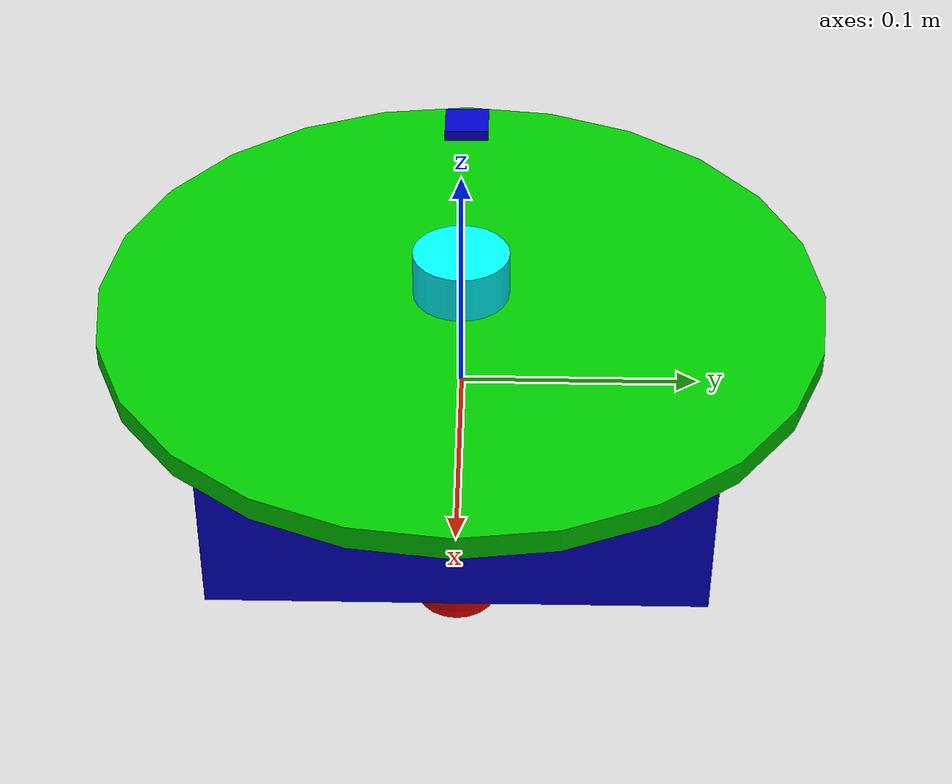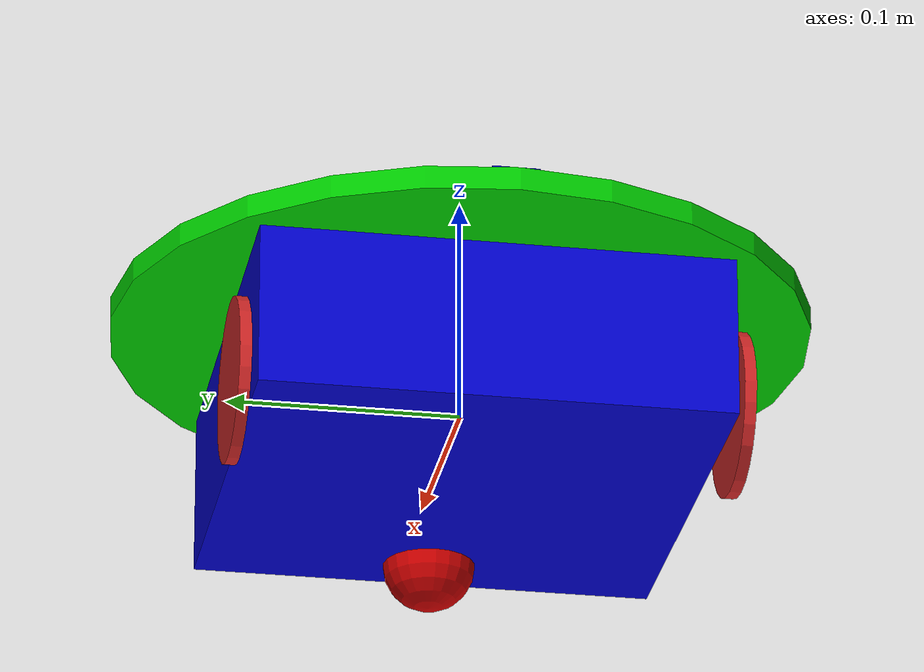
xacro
<?xml version="1.0"?>
<robot xmlns:xacro="http://www.ros.org/wiki/xacro"  name="robot">

    <xacro:arg name="use_ros2_control" default="false"/>
    <xacro:arg name="sim_mode" default="false"/>

    <xacro:include filename="robot_core.xacro" />

    <xacro:if value="$(arg use_ros2_control)">
        <xacro:include filename="ros2_control_hw_and_sim.xacro" />
    </xacro:if>
    <xacro:unless value="$(arg use_ros2_control)">
        <xacro:include filename="gazebo_control.xacro" />
    </xacro:unless>

    <xacro:include filename="lidar.xacro" />

    <!-- xacro:include filename="robot20230324plugin.xacro" /-->

    <xacro:include filename="camera20230324.xacro" />

    <!-- xacro:include filename="face.xacro" /-->

</robot>

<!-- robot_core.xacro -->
<robot name="two_wheeled_robot" xmlns:xacro="http://ros.org/wiki/xacro">

  <!-- ****************** ROBOT CONSTANTS *******************************  -->
  <!-- Define the size of the robot's main chassis in meters -->
  <xacro:property name="base_width" value="0.2"/>
  <xacro:property name="base_length" value="0.20"/>
  <xacro:property name="base_height" value="0.07"/>
  <xacro:property name="cover_rad" value="0.15"/>
  <xacro:property name="cover_thick" value="0.01"/>

  <!-- Define the shape of the robot's two back wheels in meters -->
  <xacro:property name="wheel_radius" value="0.035"/>
  <xacro:property name="wheel_width" value="0.005"/>

  <!-- x-axis points forward, y-axis points to left, z-axis points upwards -->
  <!-- Define the gap between the wheel and chassis along y-axis in meters -->
  <xacro:property name="wheel_ygap" value="0.005"/>

  <!-- Position the wheels along the z-axis -->
  <xacro:property name="wheel_zoff" value="0.02"/>

  <!-- Position the wheels along the x-axis -->
  <xacro:property name="wheel_xoff" value="-0.065"/>

  <!-- caster wheel  -->
  <xacro:property name="caster_radius" value="0.02"/>
  <xacro:property name="caster_xoff" value="0.080"/>

  <!-- material colors -->
  <material name="blue">
    <color rgba="0 0 0.8 1"/>
  </material>
  <material name="black">
    <color rgba="0 0 0 1"/>
  </material>
  <material name="white">
    <color rgba="1 1 1 1"/>
  </material>
  <material name="red">
    <color rgba="0.8 0.0 0.0 1.0"/>
  </material>
  <material name="mycolor">
    <color rgba="0.1 0.2 0.2 1.0"/>
  </material>
  <material name="green">
    <color rgba="0 0.8 0 1"/>
  </material>
  <material name="gray">
    <color rgba="0.5 0.5 0.5 1.0"/>
  </material>
  <material name="cyan">
    <color rgba="0 1.0 1.0 1.0"/>
  </material>

  <!-- Define intertial property macros  -->
  <!--Interial macros-->
  <xacro:macro name="cylinder_all" params="m r h">
    <inertial>
      <mass value="${m}"/>
      <inertia ixx="${m*(3*r*r+h*h)/12}" ixy = "0" ixz = "0" iyy="${m*(3*r*r+h*h)/12}" iyz = "0" izz="${m*r*r/2}"/>
    </inertial>
  </xacro:macro>

  <xacro:macro name="box_all" params="m w h d">
    <inertial>
      <mass value="${m}"/>
      <inertia ixx="${m / 12.0 * (d*d + h*h)}" ixy="0.0" ixz="0.0" iyy="${m / 12.0 * (w*w + h*h)}" iyz="0.0" izz="${m / 12.0 * (w*w + d*d)}"/>
    </inertial>
  </xacro:macro>

  <xacro:macro name="sphere_all" params="m r">
    <inertial>
      <mass value="${m}"/>
      <inertia ixx="${2.0*m*(r*r)/5.0}" ixy="0.0" ixz="0.0" iyy="${2.0*m*(r*r)/5.0}" iyz="0.0" izz="${2.0*m*(r*r)/5.0}"/>
    </inertial>
  </xacro:macro>

  <xacro:macro name="box_inertia" params="m w h d">
    <inertial>
      <origin xyz="0 0 0" rpy="${pi/2} 0 ${pi/2}"/>
      <mass value="${m}"/>
      <inertia ixx="${(m/12) * (h*h + d*d)}" ixy="0.0" ixz="0.0" iyy="${(m/12) * (w*w + d*d)}" iyz="0.0" izz="${(m/12) * (w*w + h*h)}"/>
    </inertial>
  </xacro:macro>

  <xacro:macro name="cylinder_inertia" params="m r h">
    <inertial>
      <origin xyz="0 0 0" rpy="${pi/2} 0 0" />
      <mass value="${m}"/>
      <inertia ixx="${(m/12) * (3*r*r + h*h)}" ixy = "0" ixz = "0" iyy="${(m/12) * (3*r*r + h*h)}" iyz = "0" izz="${(m/2) * (r*r)}"/>
    </inertial>
  </xacro:macro>

  <xacro:macro name="sphere_inertia" params="m r">
    <inertial>
      <mass value="${m}"/>
      <inertia ixx="${(2/5) * m * (r*r)}" ixy="0.0" ixz="0.0" iyy="${(2/5) * m * (r*r)}" iyz="0.0" izz="${(2/5) * m * (r*r)}"/>
    </inertial>
  </xacro:macro>

  <!-- ********************** ROBOT BASE *********************************  -->

  <!--Base link-->
  <link name="base_link">
    <xacro:box_inertia m="1" w="${base_length}" h="${base_width}" d="${base_height}"/>
    <visual>
      <geometry>
        <box size="${base_length} ${base_width} ${base_height}"/>
      </geometry>
      <material name="blue" />
    </visual>
    <collision>
      <geometry>
        <box size="${base_length} ${base_width} ${base_height}"/>
      </geometry>
    </collision>
  </link>

  <gazebo reference="base_link">
    <material>Gazebo/Blue</material>
  </gazebo>

  <!-- Top Cover -->
  <link name="top_cover">
    <xacro:cylinder_all m="1" r="${cover_rad}" h="${cover_thick}"/>
    <visual>
     <origin xyz="0 0 0" rpy="0 0 0"/>
     <geometry>
        <cylinder radius="${cover_rad}" length="${cover_thick}" />
      </geometry>
      <material name="green" />
    </visual>
    <collision name="cover_collision">
      <origin xyz="0 0 0" rpy="0 0 0"/>
      <geometry>
        <cylinder radius="${cover_rad}" length="${cover_thick}" />
      </geometry>
    </collision>
    <sensor name="my_contact" type="contact">
      <contact>
         <collision>cover_collision</collision>
       </contact>
     </sensor>
  </link>
  <joint name="cover_base_joint" type="fixed">
    <axis xyz="0 1 0" rpy="0 0 0" />
    <parent link="base_link"/>
    <child link="top_cover"/>
    <origin xyz=" 0 0 ${(base_height + cover_thick) / 2}" rpy="0 0 0"/>
  </joint>

  <gazebo reference="top_cover">
    <material>Gazebo/Green</material>
  </gazebo>

  <!-- ****************** ROBOT BASE FOOTPRINT ***************************  -->
  <!-- Define the center of the main robot chassis projected on the ground -->
  <link name="base_footprint">
  	<xacro:box_inertia m="0" w="0" d="0" h="0"/>
  </link>

  <!-- The base footprint of the robot is located underneath the chassis -->
  <joint name="base_joint" type="fixed">
    <parent link="base_link"/>
    <child link="base_footprint"/>
    <origin xyz="0.0 0.0 ${-(wheel_radius+wheel_zoff)}" rpy="0 0 0"/>
  </joint>

  <!-- *********************** DRIVE WHEELS ******************************  -->
  <xacro:macro name="wheel1" params="prefix x_reflect y_reflect">
    <link name="${prefix}_link">
      <visual>
        <origin xyz="0 0 0" rpy="${pi/2} 0 0"/>
        <geometry>
            <cylinder radius="${wheel_radius}" length="${wheel_width}"/>
        </geometry>
        <!-- material name="red" / -->
      </visual>

      <collision>
        <origin xyz="0 0 0" rpy="${pi/2} 0 0"/>
        <geometry>
          <cylinder radius="${wheel_radius}" length="${wheel_width}"/>
        </geometry>
      </collision>

      <xacro:cylinder_inertia m="0.5" r="${wheel_radius}" h="${wheel_width}"/>
    </link>
    <gazebo reference="${prefix}_link">
      <material>Gazebo/Red</material>
    </gazebo>
    <!-- Connect the wheels to the base_link at the appropriate location, and
         define a continuous joint to allow the wheels to freely rotate about
         an axis -->
    <joint name="${prefix}_joint" type="continuous">
      <parent link="base_link"/>
      <child link="${prefix}_link"/>
      <origin xyz="${x_reflect*wheel_xoff} ${y_reflect*(base_width/2+wheel_ygap)} ${-wheel_zoff}" rpy="0 0 0"/>
      <axis xyz="0 1 0"/>
    </joint>
  </xacro:macro>

  <xacro:macro name="wheel2" params="prefix x_reflect y_reflect">
    <link name="${prefix}_link">
      <visual>
        <origin xyz="0 0 0" rpy="${pi/2} 0 0"/>
        <geometry>
            <cylinder radius="${wheel_radius + 0.02}" length="${wheel_width}"/>
        </geometry>
        <!-- material name="red" / -->
      </visual>

      <collision>
        <origin xyz="0 0 0" rpy="${pi/2} 0 0"/>
        <geometry>
          <cylinder radius="${wheel_radius + 0.02}" length="${wheel_width}"/>
        </geometry>
      </collision>

      <xacro:cylinder_inertia m="0.5" r="${wheel_radius + 0.02}" h="${wheel_width}"/>
    </link>
    <gazebo reference="${prefix}_link">
      <material>Gazebo/Red</material>
    </gazebo>
    <!-- Connect the wheels to the base_link at the appropriate location, and
         define a continuous joint to allow the wheels to freely rotate about
         an axis -->
    <joint name="${prefix}_joint" type="continuous">
      <parent link="base_link"/>
      <child link="${prefix}_link"/>
      <origin xyz="${x_reflect*wheel_xoff} ${y_reflect*(base_width/2+wheel_ygap)} ${-wheel_zoff}" rpy="0 0 0"/>
      <axis xyz="0 1 0"/>
    </joint>
  </xacro:macro>

  <xacro:wheel1 prefix="drivewhl_l" x_reflect="1" y_reflect="1" />
  <xacro:wheel1 prefix="drivewhl_r" x_reflect="1" y_reflect="-1" />

  <!-- *********************** CASTER WHEEL ******************************  -->

  <link name="rear_caster">
    <visual>
      <geometry>
        <sphere radius="${caster_radius}"/>
      </geometry>
      <material name="red" />
    </visual>

    <collision>
      <origin xyz="0 0 0" rpy="0 0 0"/>
      <geometry>
        <sphere radius="${caster_radius}"/>
      </geometry>
    </collision>

    <xacro:sphere_inertia m="0.5" r="${caster_radius}"/>
  </link>

  <gazebo reference="rear_caster">
    <mu1>0.01</mu1>
    <mu2>0.01</mu2>
    <material>Gazebo/Red</material>
  </gazebo>

  <joint name="rear_caster_joint" type="fixed">
    <parent link="base_link"/>
    <child link="rear_caster"/>
    <origin xyz="${caster_xoff} 0 -${base_height/2} " rpy="0 0 0"/>
  </joint>

  <!-- *********************** IMU SETUP *********************************  -->
  <!-- Each sensor must be attached to a link.                              -->
  <link name="imu_link">
    <visual>
      <geometry>
        <box size="0.02 0.02 0.005"/>
      </geometry>
      <material name="blue" />
    </visual>

    <collision>
      <geometry>
        <box size="0.02 0.02 0.005"/>
      </geometry>
    </collision>

    <xacro:box_inertia m="0.1" w="0.1" d="0.1" h="0.1"/>
  </link>

  <gazebo reference="imu_link" >
    <material>Gazebo/Blue</material>
  </gazebo>

  <joint name="imu_joint" type="fixed">
    <parent link="top_cover"/>
    <child link="imu_link"/>
    <origin xyz="-${cover_rad -0.02} 0 ${(cover_thick + 0.005)/2}"/>
  </joint>

  <gazebo reference="imu_link">
    <gravity>true</gravity>
    <sensor name="twr_imu" type="imu">
      <always_on>true</always_on>
      <update_rate>100</update_rate>
      <visualize>true</visualize>
      <imu>
        <orientation>
          <x>
            <noise type="gaussian">
              <mean>0.0</mean>
              <stddev>2e-3</stddev>
            </noise>
          </x>
          <y>
            <noise type="gaussian">
              <mean>0.0</mean>
              <stddev>2e-3</stddev>
            </noise>
          </y>
          <z>
            <noise type="gaussian">
              <mean>0.0</mean>
              <stddev>2e-3</stddev>
            </noise>
          </z>
        </orientation>
        <angular_velocity>
          <x>
            <noise type="gaussian">
              <mean>0.0</mean>
              <stddev>2e-4</stddev>
            </noise>
          </x>
          <y>
            <noise type="gaussian">
              <mean>0.0</mean>
              <stddev>2e-4</stddev>
            </noise>
          </y>
          <z>
            <noise type="gaussian">
              <mean>0.0</mean>
              <stddev>2e-4</stddev>
            </noise>
          </z>
        </angular_velocity>
        <linear_acceleration>
          <x>
            <noise type="gaussian">
              <mean>0.0</mean>
              <stddev>1.7e-2</stddev>
            </noise>
          </x>
          <y>
            <noise type="gaussian">
              <mean>0.0</mean>
              <stddev>1.7e-2</stddev>
            </noise>
          </y>
          <z>
            <noise type="gaussian">
              <mean>0.0</mean>
              <stddev>1.7e-2</stddev>
            </noise>
          </z>
        </linear_acceleration>
      </imu>
      <plugin name="two_wheeled_robot_imu" filename="libgazebo_ros_imu_sensor.so">
        <initial_orientation_as_reference>false</initial_orientation_as_reference>
        <frame_name>imu_link</frame_name>
        <ros>
          <namespace>/imu</namespace>
          <remapping>~/out:=data</remapping>
        </ros>
      </plugin>
    </sensor>
</gazebo>

  <!-- *********************** LIDAR SETUP **********************************  -->

 <!-- camera -->
  <!--xacro:include filename="$(find fl_robot_py)/urdf/camera20230324.xacro" /-->
  <!-- camera -->
  <!--xacro:front_camera name = "camera" /-->

    <!--xacro:include filename="$(find fl_robot_py)/urdf/robot20230324plugin.xacro"/-->

</robot>

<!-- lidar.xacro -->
<robot xmlns:xacro="http://www.ros.org/wiki/xacro" >

    <link name="lidar_link">
        <inertial>
            <origin xyz="0 0 0" rpy="0 0 0"/>
            <mass value="0.125"/>
            <inertia ixx="0.001"  ixy="0"  ixz="0" iyy="0.001" iyz="0" izz="0.001" />
        </inertial>

        <collision>
            <origin xyz="0 0 0" rpy="0 0 0"/>
            <geometry>
                <cylinder radius="0.020" length="0.020"/>
            </geometry>
        </collision>

        <visual>
            <origin xyz="0 0 0" rpy="0 0 0"/>
            <geometry>
                <cylinder radius="0.020" length="0.020"/>
            </geometry>
            <material name="cyan" />
        </visual>
    </link>

    <gazebo reference="lidar_link">
        <material>Gazebo/Cyan</material>
    </gazebo>

    <joint name="lidar_joint" type="fixed">
        <parent link="top_cover"/>
        <child link="lidar_link"/>
        <origin xyz="0.0 0.0 ${(cover_thick + 0.02)/2}" rpy="0 0 0"/>
    </joint>

    <gazebo reference="lidar_link">
        <sensor name="lidar" type="ray">
            <always_on>true</always_on>
            <visualize>false</visualize>
            <update_rate>5</update_rate>
            <ray>
                <scan>
                    <horizontal>
                        <samples>180</samples>
                        <resolution>1.000000</resolution>
                        <min_angle>-3.14</min_angle>
                        <max_angle>3.14</max_angle>
                    </horizontal>
                </scan>
                <range>
                    <min>0.3</min>
                    <max>30.0</max>
                    <resolution>0.01</resolution>
                </range>
                <noise>
                    <type>gaussian</type>
                    <mean>0.0</mean>
                    <stddev>0.01</stddev>
                </noise>
            </ray>
            <plugin name="scan" filename="libgazebo_ros_ray_sensor.so">
                <ros>
                    <remapping>~/out:=scan</remapping>
                </ros>
                <output_type>sensor_msgs/LaserScan</output_type>
                <frame_name>lidar_link</frame_name>
            </plugin>
        </sensor>
    </gazebo>
    <gazebo reference="lidar_link">
        <mu1>0.01</mu1>
        <mu2>0.01</mu2>
    </gazebo>

</robot>
